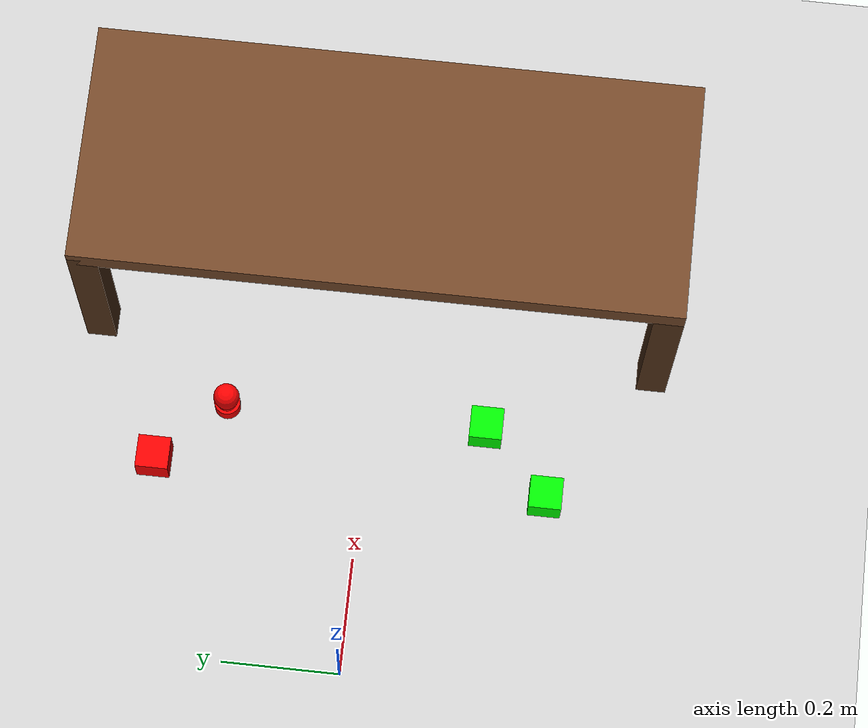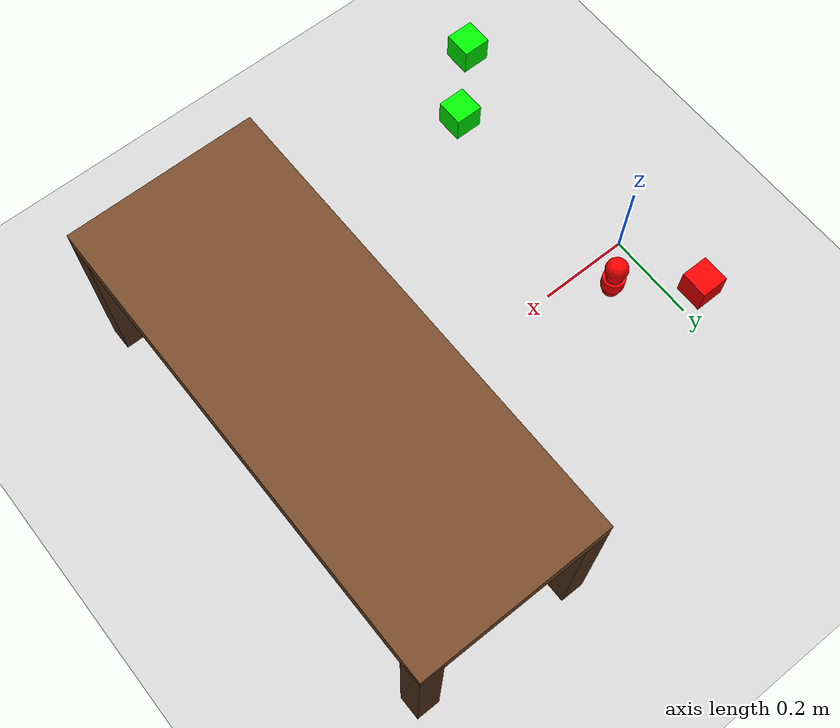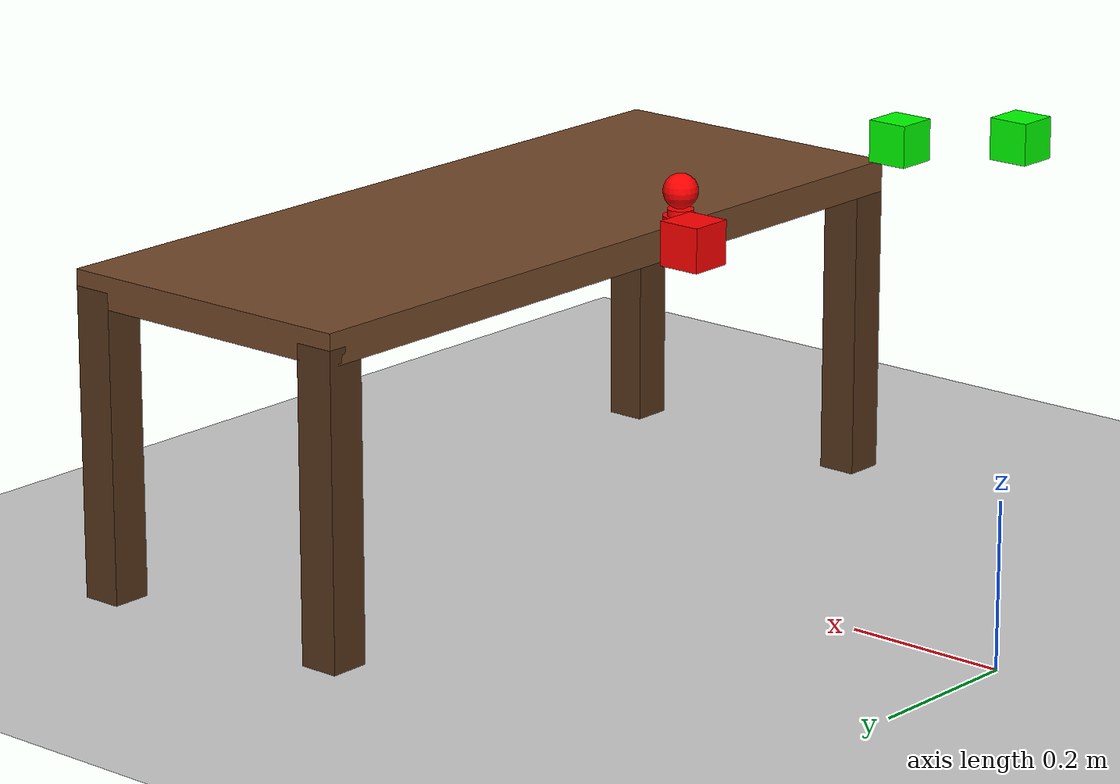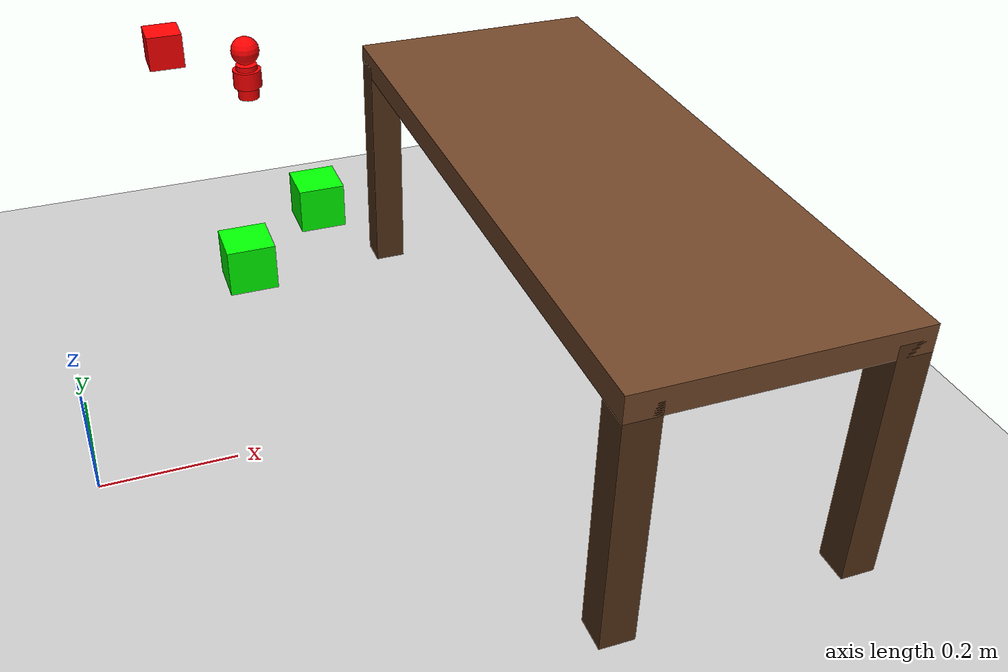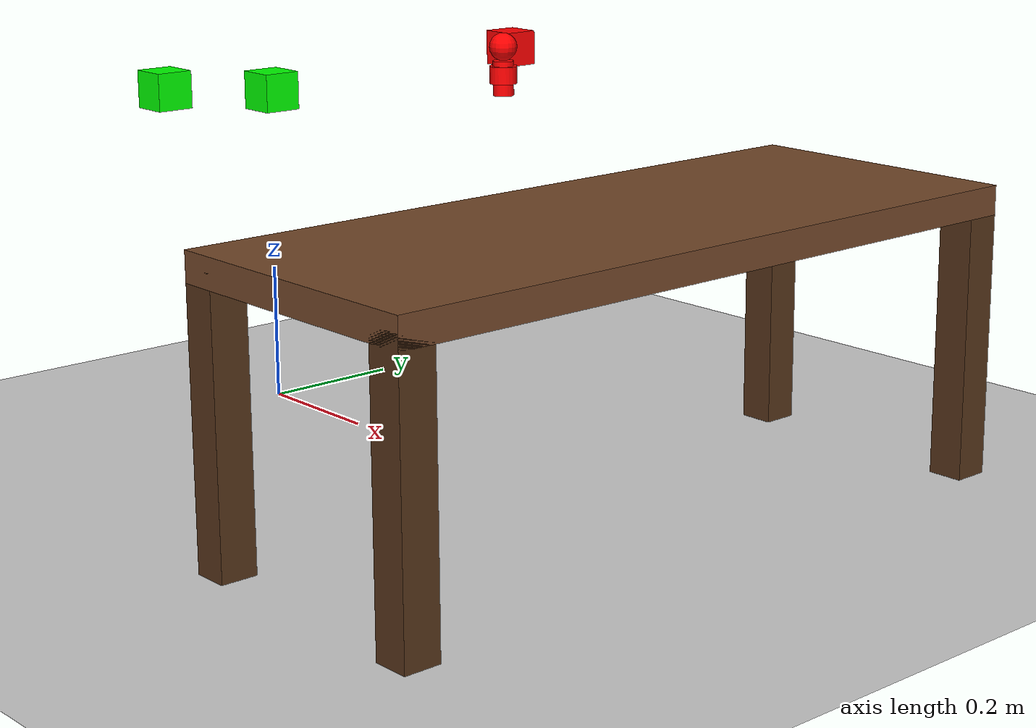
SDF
<?xml version="1.0" ?>
<sdf version="1.7">
  <world name="default">
    <!-- gravity is on by default, but being explicit is fine -->
    <gravity>0 0 -9.81</gravity>

    <!-- Light -->
    <include>
      <uri>https://fuel.gazebosim.org/1.0/openrobotics/models/Sun</uri>
    </include>

    <!-- Static floor with collision -->
    <include>
      <uri>https://fuel.gazebosim.org/1.0/openrobotics/models/Ground Plane</uri>
    </include>

    <plugin filename="gz-sim-physics-system" name="gz::sim::systems::Physics"/>
    <plugin filename="gz-sim-user-commands-system" name="gz::sim::systems::UserCommands"/>
    <plugin filename="gz-sim-scene-broadcaster-system" name="gz::sim::systems::SceneBroadcaster"/>
    <plugin filename="gz-sim-sensors-system" name="gz::sim::systems::Sensors">
      <render_engine>ogre2</render_engine>
    </plugin>

  <gui fullscreen="0">
          <plugin filename="MinimalScene" name="3D View">
        <gz-gui>
          <title>3D View</title>
          <property type="bool" key="showTitleBar">false</property>
          <property type="string" key="state">docked</property>
        </gz-gui>

        <engine>ogre2</engine>
        <scene>scene</scene>
        <ambient_light>1.0 1.0 1.0</ambient_light>
        <background_color>0.4 0.6 1.0</background_color>
        <camera_pose>1.1 -1.0 1.05 0 0.28 2.2</camera_pose>
      </plugin>
            <plugin filename="GzSceneManager" name="Scene Manager">
        <gz-gui>
          <property key="resizable" type="bool">false</property>
          <property key="width" type="double">5</property>
          <property key="height" type="double">5</property>
          <property key="state" type="string">floating</property>
          <property key="showTitleBar" type="bool">false</property>
        </gz-gui>
      </plugin>
      <plugin filename="InteractiveViewControl" name="Interactive view control">
        <gz-gui>
          <property key="resizable" type="bool">false</property>
          <property key="width" type="double">5</property>
          <property key="height" type="double">5</property>
          <property key="state" type="string">floating</property>
          <property key="showTitleBar" type="bool">false</property>
        </gz-gui>
      </plugin>

      <plugin filename="WorldControl" name="World control">
        <gz-gui>
          <title>World control</title>
          <property type="bool" key="showTitleBar">false</property>
          <property type="bool" key="resizable">false</property>
          <property type="double" key="height">72</property>
          <property type="double" key="width">140</property>
          <property type="string" key="state">floating</property>
          <anchors target="3D View">
            <line own="left" target="left"/>
            <line own="bottom" target="bottom"/>
          </anchors>
        </gz-gui>
        <play_pause>true</play_pause>
        <step>true</step>
        <start_paused>false</start_paused>
        <service>/world/default/control</service>
        <stats_topic>/world/default/stats</stats_topic>
      </plugin>

      <plugin filename="WorldStats" name="World stats">
        <gz-gui>
          <title>World stats</title>
          <property type="bool" key="showTitleBar">false</property>
          <property type="bool" key="resizable">false</property>
          <property type="double" key="height">110</property>
          <property type="double" key="width">320</property>
          <property type="string" key="state">floating</property>
          <anchors target="3D View">
            <line own="right" target="right"/>
            <line own="bottom" target="bottom"/>
          </anchors>
        </gz-gui>
        <sim_time>true</sim_time>
        <real_time>true</real_time>
        <real_time_factor>true</real_time_factor>
        <iterations>true</iterations>
        <topic>/world/default/stats</topic>
      </plugin>
  </gui>

    <!-- 5x5x5 cm cubes around the robot in alternating RGB -->
    <model name="cube_red_1">
      <static>false</static>
      <pose>0.3 0.2 0.525 0 0 0</pose>
      <link name="link">
        <inertial>
          <mass>0.05</mass>
          <inertia>
            <ixx>2.083333e-05</ixx>
            <iyy>2.083333e-05</iyy>
            <izz>2.083333e-05</izz>
            <ixy>0</ixy>
            <ixz>0</ixz>
            <iyz>0</iyz>
          </inertia>
        </inertial>
        <collision name="col"><pose>0 0 -0.025 0 0 0</pose><geometry><cylinder><radius>0.015</radius><length>0.05</length></cylinder></geometry></collision>
        <visual name="vis"><pose>0 0 -0.025 0 0 0</pose><geometry><cylinder><radius>0.015</radius><length>0.05</length></cylinder></geometry>
          <material><ambient>1 0 0 1</ambient><diffuse>1 0 0 1</diffuse></material>
        </visual>
        <collision name="col2"><pose>0 0 0.02 0 0 0</pose><geometry><sphere><radius>0.020</radius></sphere></geometry></collision>
        <visual name="vis2"><pose>0 0 0.02 0 0 0</pose><geometry><sphere><radius>0.020</radius></sphere></geometry>
          <material><ambient>1 0 0 1</ambient><diffuse>1 0 0 1</diffuse></material>
        </visual>
        <collision name="col3"><pose>0 0 -0.02 0 0 0</pose><geometry><cylinder><radius>0.020</radius><length>0.025</length></cylinder></geometry></collision>
        <visual name="vis3"><pose>0 0 -0.02 0 0 0</pose><geometry><cylinder><radius>0.020</radius><length>0.025</length></cylinder></geometry>
          <material><ambient>1 0 0 1</ambient><diffuse>1 0 0 1</diffuse></material>
        </visual>
      </link>
    </model>

    <model name="cube_green_1">
      <static>false</static>
      <pose>0.3 -0.2 0.525 0 0 0</pose>
      <link name="link">
        <inertial> <!-- unnecessary -->
          <mass>0.05</mass>
          <inertia>
            <ixx>2.083333e-05</ixx>
            <iyy>2.083333e-05</iyy>
            <izz>2.083333e-05</izz>
            <ixy>0</ixy>
            <ixz>0</ixz>
            <iyz>0</iyz>
          </inertia>
        </inertial>
        <collision name="col"><geometry><box><size>0.05 0.05 0.05</size></box></geometry></collision>
        <visual name="vis"><geometry><box><size>0.05 0.05 0.05</size></box></geometry>
          <material><ambient>0 1 0 1</ambient><diffuse>0 1 0 1</diffuse></material>
        </visual>
      </link>
    </model>

    <model name="cube_red_2">
      <static>false</static>
      <pose>0.2 0.3 0.525 0 0 0</pose>
      <link name="link">
        <inertial>
          <mass>0.05</mass>
          <inertia>
            <ixx>2.083333e-05</ixx>
            <iyy>2.083333e-05</iyy>
            <izz>2.083333e-05</izz>
            <ixy>0</ixy>
            <ixz>0</ixz>
            <iyz>0</iyz>
          </inertia>
        </inertial>
        <collision name="col"><geometry><box><size>0.05 0.05 0.05</size></box></geometry></collision>
        <visual name="vis"><geometry><box><size>0.05 0.05 0.05</size></box></geometry>
          <material><ambient>1 0 0 1</ambient><diffuse>1 0 0 1</diffuse></material>
        </visual>
      </link>
    </model>

    <model name="cube_green_2">
      <static>false</static>
      <pose>0.2 -0.3 0.525 0 0 0</pose>
      <link name="link">
        <inertial>
          <mass>0.05</mass>
          <inertia>
            <ixx>2.083333e-05</ixx>
            <iyy>2.083333e-05</iyy>
            <izz>2.083333e-05</izz>
            <ixy>0</ixy>
            <ixz>0</ixz>
            <iyz>0</iyz>
          </inertia>
        </inertial>
        <collision name="col"><geometry><box><size>0.05 0.05 0.05</size></box></geometry></collision>
        <visual name="vis"><geometry><box><size>0.05 0.05 0.05</size></box></geometry>
          <material><ambient>0 1 0 1</ambient><diffuse>0 1 0 1</diffuse></material>
        </visual>
      </link>
    </model>

    <model name="table">
      <static>true</static>
      <pose>0.75 0 0 0 0 0</pose>
      <link name="link">
        <collision name="tabletop_collision">
          <pose>0 0 0.38 0 0 0</pose>
          <geometry>
            <box>
              <size>0.4 1.0 0.04</size>
            </box>
          </geometry>
        </collision>
        <visual name="tabletop_visual">
          <pose>0 0 0.38 0 0 0</pose>
          <geometry>
            <box>
              <size>0.4 1.0 0.04</size>
            </box>
          </geometry>
          <material>
            <ambient>0.45 0.28 0.16 1</ambient>
            <diffuse>0.45 0.28 0.16 1</diffuse>
          </material>
        </visual>

        <collision name="leg_front_left_collision">
          <pose>0.175 0.475 0.19 0 0 0</pose>
          <geometry>
            <box>
              <size>0.05 0.05 0.38</size>
            </box>
          </geometry>
        </collision>
        <visual name="leg_front_left_visual">
          <pose>0.175 0.475 0.19 0 0 0</pose>
          <geometry>
            <box>
              <size>0.05 0.05 0.38</size>
            </box>
          </geometry>
          <material>
            <ambient>0.33 0.20 0.10 1</ambient>
            <diffuse>0.33 0.20 0.10 1</diffuse>
          </material>
        </visual>

        <collision name="leg_front_right_collision">
          <pose>0.175 -0.475 0.19 0 0 0</pose>
          <geometry>
            <box>
              <size>0.05 0.05 0.38</size>
            </box>
          </geometry>
        </collision>
        <visual name="leg_front_right_visual">
          <pose>0.175 -0.475 0.19 0 0 0</pose>
          <geometry>
            <box>
              <size>0.05 0.05 0.38</size>
            </box>
          </geometry>
          <material>
            <ambient>0.33 0.20 0.10 1</ambient>
            <diffuse>0.33 0.20 0.10 1</diffuse>
          </material>
        </visual>

        <collision name="leg_back_left_collision">
          <pose>-0.175 0.475 0.19 0 0 0</pose>
          <geometry>
            <box>
              <size>0.05 0.05 0.38</size>
            </box>
          </geometry>
        </collision>
        <visual name="leg_back_left_visual">
          <pose>-0.175 0.475 0.19 0 0 0</pose>
          <geometry>
            <box>
              <size>0.05 0.05 0.38</size>
            </box>
          </geometry>
          <material>
            <ambient>0.33 0.20 0.10 1</ambient>
            <diffuse>0.33 0.20 0.10 1</diffuse>
          </material>
        </visual>

        <collision name="leg_back_right_collision">
          <pose>-0.175 -0.475 0.19 0 0 0</pose>
          <geometry>
            <box>
              <size>0.05 0.05 0.38</size>
            </box>
          </geometry>
        </collision>
        <visual name="leg_back_right_visual">
          <pose>-0.175 -0.475 0.19 0 0 0</pose>
          <geometry>
            <box>
              <size>0.05 0.05 0.38</size>
            </box>
          </geometry>
          <material>
            <ambient>0.33 0.20 0.10 1</ambient>
            <diffuse>0.33 0.20 0.10 1</diffuse>
          </material>
        </visual>
      </link>
    </model>
  </world>
</sdf>
